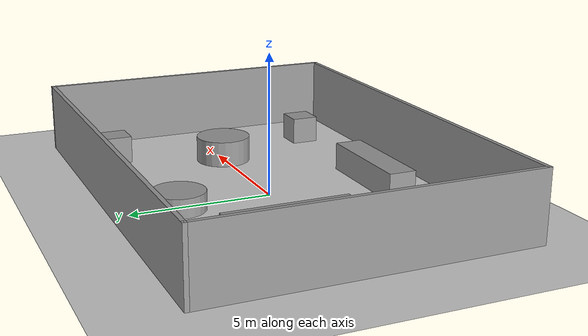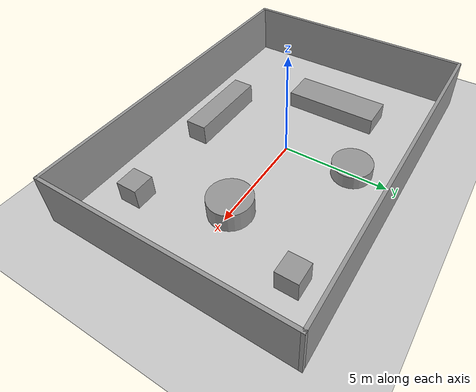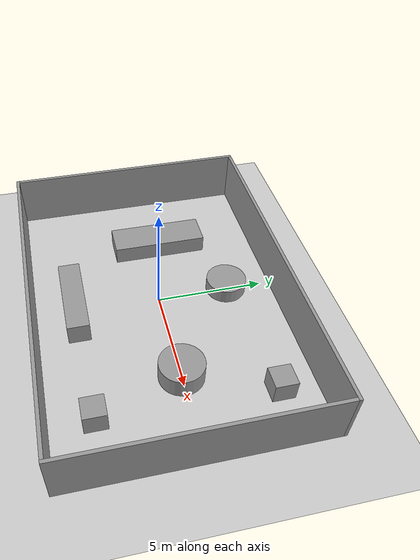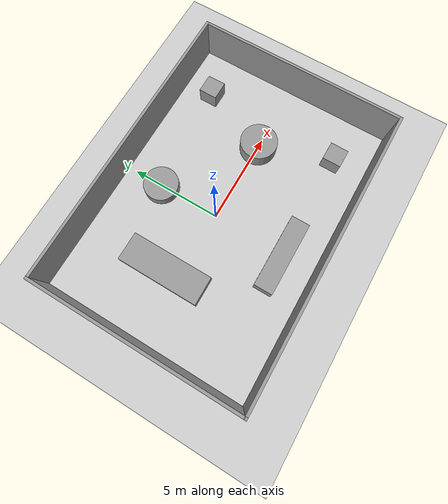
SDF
<sdf version="1.7">
 <world name="default">
  <light name="sun" type="directional">
   <pose>0 0 10 0 -0 0</pose>
   <diffuse>0.8 0.8 0.8 1</diffuse>
   <specular>0.2 0.2 0.2 1</specular>
   <attenuation>
    <range>1000</range>
    <constant>0.9</constant>
    <linear>0.01</linear>
    <quadratic>0.001</quadratic>
   </attenuation>
   <direction>-0.5 0.1 -0.9</direction>
   <spot><inner_angle>0</inner_angle><outer_angle>0</outer_angle><falloff>0</falloff></spot>
  </light>
  <model name="ground_plane">
   <static>1</static>
   <link name="link">
    <collision name="collision">
     <geometry><plane><normal>0 0 1</normal><size>100 100</size></plane></geometry>
     <surface><friction><ode><mu>100</mu><mu2>50</mu2></ode></friction></surface>
    </collision>
    <visual name="visual">
     <cast_shadows>0</cast_shadows>
     <geometry><plane><normal>0 0 1</normal><size>100 100</size></plane></geometry>
     <material>
      <script><uri>file://media/materials/scripts/gazebo.material</uri><name>Gazebo/Grey</name></script>
     </material>
    </visual>
   </link>
  </model>
  <gravity>0 0 -9.8</gravity>
  <magnetic_field>6e-06 2.3e-05 -4.2e-05</magnetic_field>
  <atmosphere type="adiabatic"/>
  <physics type="ode">
   <max_step_size>0.001</max_step_size>
   <real_time_factor>1</real_time_factor>
   <real_time_update_rate>1000</real_time_update_rate>
  </physics>
  <scene><ambient>0.4 0.4 0.4 1</ambient><background>0.7 0.7 0.7 1</background><shadows>1</shadows></scene>
  <audio><device>default</device></audio>
  <spherical_coordinates>
   <surface_model>EARTH_WGS84</surface_model>
   <latitude_deg>0</latitude_deg>
   <longitude_deg>0</longitude_deg>
   <elevation>0</elevation>
   <heading_deg>0</heading_deg>
  </spherical_coordinates>
  <model name="my_world">
   <pose>0.589173 -0.146125 0 0 -0 0</pose>
   <link name="Wall_14">
    <collision name="Wall_14_Collision">
     <geometry><box><size>11.5 0.15 2.5</size></box></geometry>
     <pose>0 0 1.25 0 -0 0</pose>
    </collision>
    <visual name="Wall_14_Visual">
     <pose>0 0 1.25 0 -0 0</pose>
     <geometry><box><size>11.5 0.15 2.5</size></box></geometry>
     <material>
      <script><uri>file://media/materials/scripts/gazebo.material</uri><name>Gazebo/Grey</name></script>
      <ambient>1 1 1 1</ambient>
     </material>
     <meta><layer>0</layer></meta>
    </visual>
    <pose>-7.925 -0 0 0 -0 -1.5708</pose>
   </link>
   <link name="Wall_15">
    <collision name="Wall_15_Collision">
     <geometry><box><size>16 0.15 2.5</size></box></geometry>
     <pose>0 0 1.25 0 -0 0</pose>
    </collision>
    <visual name="Wall_15_Visual">
     <pose>0 0 1.25 0 -0 0</pose>
     <geometry><box><size>16 0.15 2.5</size></box></geometry>
     <material>
      <script><uri>file://media/materials/scripts/gazebo.material</uri><name>Gazebo/Grey</name></script>
      <ambient>1 1 1 1</ambient>
     </material>
     <meta><layer>0</layer></meta>
    </visual>
    <pose>0 -5.675 0 0 -0 0</pose>
   </link>
   <link name="Wall_16">
    <collision name="Wall_16_Collision">
     <geometry><box><size>11.5 0.15 2.5</size></box></geometry>
     <pose>0 0 1.25 0 -0 0</pose>
    </collision>
    <visual name="Wall_16_Visual">
     <pose>0 0 1.25 0 -0 0</pose>
     <geometry><box><size>11.5 0.15 2.5</size></box></geometry>
     <material>
      <script><uri>file://media/materials/scripts/gazebo.material</uri><name>Gazebo/Grey</name></script>
      <ambient>1 1 1 1</ambient>
     </material>
     <meta><layer>0</layer></meta>
    </visual>
    <pose>7.925 -0 0 0 -0 1.5708</pose>
   </link>
   <link name="Wall_17">
    <collision name="Wall_17_Collision">
     <geometry><box><size>16 0.15 2.5</size></box></geometry>
     <pose>0 0 1.25 0 -0 0</pose>
    </collision>
    <visual name="Wall_17_Visual">
     <pose>0 0 1.25 0 -0 0</pose>
     <geometry><box><size>16 0.15 2.5</size></box></geometry>
     <material>
      <script><uri>file://media/materials/scripts/gazebo.material</uri><name>Gazebo/Grey</name></script>
      <ambient>1 1 1 1</ambient>
     </material>
     <meta><layer>0</layer></meta>
    </visual>
    <pose>0 5.675 0 0 -0 3.14159</pose>
   </link>
   <static>1</static>
  </model>
  <model name="unit_box">
   <pose>-3.72849 0.724821 0.411238 0.000617 -0 0</pose>
   <link name="link">
    <inertial>
     <mass>1</mass>
     <inertia>
      <ixx>0.166667</ixx>
      <ixy>0</ixy>
      <ixz>0</ixz>
      <iyy>0.166667</iyy>
      <iyz>0</iyz>
      <izz>0.166667</izz>
     </inertia>
    </inertial>
    <collision name="collision"><geometry><box><size>1.52766 4.45272 0.825222</size></box></geometry></collision>
    <visual name="visual">
     <geometry><box><size>1.52766 4.45272 0.825222</size></box></geometry>
     <material>
      <script><name>Gazebo/Grey</name><uri>file://media/materials/scripts/gazebo.material</uri></script>
     </material>
    </visual>
   </link>
   <static>1</static>
  </model>
  <model name="unit_cylinder">
   <pose>4.49596 -0.012116 0.472768 0 -0 2e-06</pose>
   <link name="link">
    <inertial>
     <mass>1</mass>
     <inertia><ixx>0.145833</ixx><ixy>0</ixy><ixz>0</ixz><iyy>0.145833</iyy><iyz>0</iyz><izz>0.125</izz></inertia>
    </inertial>
    <collision name="collision">
     <geometry><cylinder><radius>1.00244</radius><length>0.945536</length></cylinder></geometry>
    </collision>
    <visual name="visual">
     <geometry><cylinder><radius>1.00244</radius><length>0.945536</length></cylinder></geometry>
     <material>
      <script><name>Gazebo/Grey</name><uri>file://media/materials/scripts/gazebo.material</uri></script>
     </material>
    </visual>
   </link>
   <static>1</static>
  </model>
  <model name="unit_cylinder_0">
   <pose>-0.074384 3.29652 0.336366 0 -0 0</pose>
   <link name="link">
    <inertial>
     <mass>1</mass>
     <inertia><ixx>0.145833</ixx><ixy>0</ixy><ixz>0</ixz><iyy>0.145833</iyy><iyz>0</iyz><izz>0.125</izz></inertia>
    </inertial>
    <collision name="collision">
     <geometry><cylinder><radius>0.933525</radius><length>0.672732</length></cylinder></geometry>
    </collision>
    <visual name="visual">
     <geometry><cylinder><radius>0.933525</radius><length>0.672732</length></cylinder></geometry>
     <material>
      <script><name>Gazebo/Grey</name><uri>file://media/materials/scripts/gazebo.material</uri></script>
     </material>
    </visual>
   </link>
   <static>1</static>
  </model>
  <model name="unit_box_0">
   <pose>-0.249788 -3.94629 0.499288 0 -0.00036 -1e-06</pose>
   <link name="link">
    <inertial>
     <mass>1</mass>
     <inertia>
      <ixx>0.166667</ixx>
      <ixy>0</ixy>
      <ixz>0</ixz>
      <iyy>0.166667</iyy>
      <iyz>0</iyz>
      <izz>0.166667</izz>
     </inertia>
    </inertial>
    <collision name="collision"><geometry><box><size>3.96113 1 1</size></box></geometry></collision>
    <visual name="visual">
     <geometry><box><size>3.96113 1 1</size></box></geometry>
     <material>
      <script><name>Gazebo/Grey</name><uri>file://media/materials/scripts/gazebo.material</uri></script>
     </material>
    </visual>
   </link>
   <static>1</static>
  </model>
  <model name="unit_box_1">
   <pose>6.03194 3.79942 0.499995 -1e-05 -0 0</pose>
   <link name="link">
    <inertial>
     <mass>1</mass>
     <inertia>
      <ixx>0.166667</ixx>
      <ixy>0</ixy>
      <ixz>0</ixz>
      <iyy>0.166667</iyy>
      <iyz>0</iyz>
      <izz>0.166667</izz>
     </inertia>
    </inertial>
    <collision name="collision"><geometry><box><size>1 1 1</size></box></geometry></collision>
    <visual name="visual">
     <geometry><box><size>1 1 1</size></box></geometry>
     <material>
      <script><name>Gazebo/Grey</name><uri>file://media/materials/scripts/gazebo.material</uri></script>
     </material>
    </visual>
   </link>
   <static>1</static>
  </model>
  <model name="unit_box_2">
   <pose>5.82909 -3.87303 0.5 0 -0 0</pose>
   <link name="link">
    <inertial>
     <mass>1</mass>
     <inertia>
      <ixx>0.166667</ixx>
      <ixy>0</ixy>
      <ixz>0</ixz>
      <iyy>0.166667</iyy>
      <iyz>0</iyz>
      <izz>0.166667</izz>
     </inertia>
    </inertial>
    <collision name="collision"><geometry><box><size>1 1 1</size></box></geometry></collision>
    <visual name="visual">
     <geometry><box><size>1 1 1</size></box></geometry>
     <material>
      <script><name>Gazebo/Grey</name><uri>file://media/materials/scripts/gazebo.material</uri></script>
     </material>
    </visual>
   </link>
   <static>1</static>
  </model>
 </world>
</sdf>
